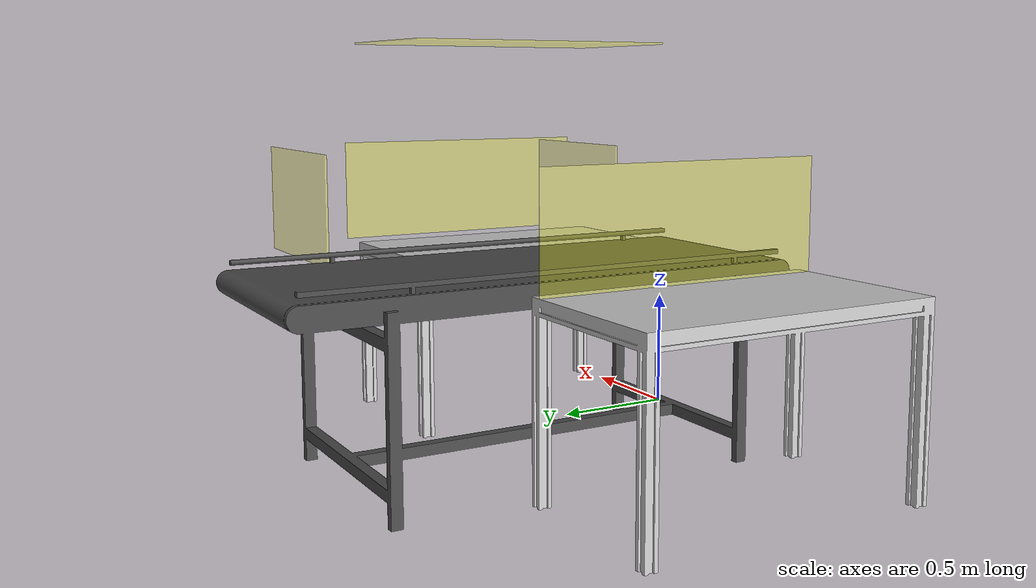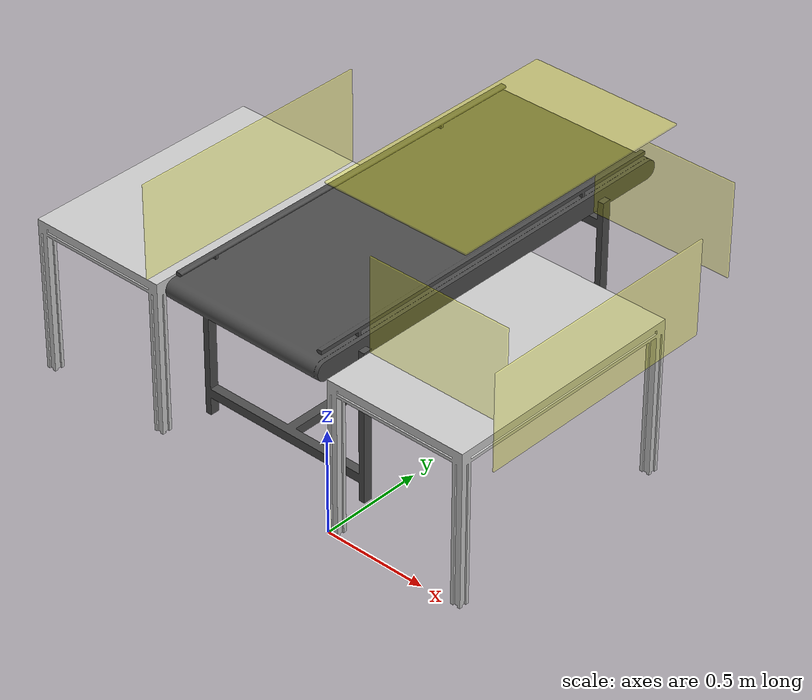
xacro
<?xml version="1.0"?>
<robot xmlns:xacro="http://www.ros.org/wiki/xacro" name="workspace_environment">

  <!-- Materials -->
  <xacro:include filename="$(find ur_workspace_description)/meshes/materials/materials.xacro" />

  <!-- World Link -->
  <link name="world"/>

  <!-- Main Table (First Table) -->
  <link name="table_top">
    <visual>
      <origin xyz="0 0 0" rpy="0 0 0"/>
      <geometry>
        <!-- Scale down from mm to m -->
        <mesh filename="package://ur_workspace_description/meshes/environment/table.stl" scale="0.001 0.001 0.001"/>
      </geometry>
      <material name="workspace_light_gray"/>
    </visual>
    <collision>
      <origin xyz="0 0 0" rpy="0 0 0"/>
      <geometry>
        <box size="-1.2 0.7 0.75"/>
      </geometry>
    </collision>
  </link>

  <joint name="world_to_table" type="fixed">
    <parent link="world"/>
    <child link="table_top"/>
    <!-- Rotated 90 degrees around Z-axis like in reference file -->
    <origin xyz="0 0.05 0" rpy="0 0 0"/>
  </joint>

  <!-- Conveyor Belt -->
  <link name="conveyor_belt">
    <visual>
      <origin xyz="0 0 0" rpy="0 0 0"/>
      <geometry>
        <!-- Scale down from mm to m -->
        <mesh filename="package://ur_workspace_description/meshes/environment/conveyor.stl" scale="0.001 0.001 0.001"/>
      </geometry>
      <material name="workspace_dark_gray"/>
    </visual>
    <collision>
      <origin xyz="0 0 0" rpy="0 0 0"/>
      <geometry>
        <box size="-2.05 0.8 0"/>
      </geometry>
    </collision>
  </link>

  <joint name="world_to_conveyor" type="fixed">
    <parent link="world"/>
    <child link="conveyor_belt"/>
    <!-- Conveyor rotated 90 degrees and positioned between tables -->
    <origin xyz="-0.87 0 0" rpy="0 0 0"/>
  </joint>

  <!-- Second Table -->
  <link name="table_top_2">
    <visual>
      <origin xyz="0 0 0" rpy="0 0 0"/>
      <geometry>
        <!-- Scale down from mm to m -->
        <mesh filename="package://ur_workspace_description/meshes/environment/table.stl" scale="0.001 0.001 0.001"/>
      </geometry>
      <material name="workspace_light_gray"/>
    </visual>
    <collision>
      <origin xyz="0 0 0" rpy="0 0 0"/>
      <geometry>
        <box size="-1.2 0.7 0.75"/>
      </geometry>
    </collision>
  </link>

  <joint name="world_to_table_2" type="fixed">
    <parent link="world"/>
    <child link="table_top_2"/>
    <!-- Second table positioned on the other side of conveyor with 90-degree rotation -->
    <origin xyz="-1.64 0.05 0" rpy="0 0 0"/>
  </joint>

  <!-- Safety Barriers - Adjusted positions for 90-degree rotated tables -->
  <!-- Left Barrier (formerly Back Barrier) -->
  <link name="safety_barrier_left">
    <visual>
      <origin xyz="0 0 0" rpy="0 0 0"/>
      <geometry>
        <!-- Scale down from mm to m -->
        <mesh filename="package://ur_workspace_description/meshes/environment/narrow_safety_barrier.stl" scale="0.001 0.001 0.001"/>
      </geometry>
      <material name="workspace_safety_yellow"/>
    </visual>
    <collision>
      <origin xyz="0 0 0.4" rpy="0 0 1.5708"/>
      <geometry>
        <box size="-1.2 0.05 0.8"/>
      </geometry>
    </collision>
  </link>

  <joint name="table_to_barrier_left" type="fixed">
    <parent link="table_top"/>
    <child link="safety_barrier_left"/>
    <origin xyz="0 1.55 0.75" rpy="0 0 0"/>
  </joint>

  <!-- Right Barrier (formerly Front Barrier) -->
  <link name="safety_barrier_right">
    <visual>
      <origin xyz="0 0 0" rpy="0 0 0"/>
      <geometry>
        <!-- Scale down from mm to m -->
        <mesh filename="package://ur_workspace_description/meshes/environment/narrow_safety_barrier.stl" scale="0.001 0.001 0.001"/>
      </geometry>
      <material name="workspace_safety_yellow"/>
    </visual>
    <collision>
      <origin xyz="0 0 0.4" rpy="0 0 1.5708"/>
      <geometry>
        <box size="-1.2 0.05 0.8"/>
      </geometry>
    </collision>
  </link>

  <joint name="table_to_barrier_right" type="fixed">
    <parent link="table_top"/>
    <child link="safety_barrier_right"/>
    <origin xyz="0 0.2 0.75" rpy="0 0 0"/>
  </joint>

  <!-- Back Barrier (formerly Right Barrier) -->
  <link name="safety_barrier_back">
    <visual>
      <origin xyz="0 0 0" rpy="0 0 0"/>
      <geometry>
        <!-- Scale down from mm to m -->
        <mesh filename="package://ur_workspace_description/meshes/environment/wide_safety_barrier.stl" scale="0.001 0.001 0.001"/>
      </geometry>
      <material name="workspace_safety_yellow"/>
    </visual>
    <collision>
      <origin xyz="0 0 0.4" rpy="0 0 1.5708"/>
      <geometry>
        <box size="0.05 0.7 0.8"/>
      </geometry>
    </collision>
  </link>

  <joint name="table_to_barrier_back" type="fixed">
    <parent link="table_top"/>
    <child link="safety_barrier_back"/>
    <origin xyz="0.85 -0.05 0.75" rpy="0 0 0"/>
  </joint>

  <!-- Front Barrier (formerly Left Barrier) -->
  <link name="safety_barrier_front">
    <visual>
      <origin xyz="0 0 0" rpy="0 0 0"/>
      <geometry>
        <!-- Scale down from mm to m -->
        <mesh filename="package://ur_workspace_description/meshes/environment/wide_safety_barrier.stl" scale="0.001 0.001 0.001"/>
      </geometry>
      <material name="workspace_safety_yellow"/>
    </visual>
    <collision>
      <origin xyz="0 0 0.4" rpy="0 0 1.5708"/>
      <geometry>
        <box size="0.05 0.7 0.8"/>
      </geometry>
    </collision>
  </link>

  <joint name="table_to_barrier_front" type="fixed">
    <parent link="table_top"/>
    <child link="safety_barrier_front"/>
    <origin xyz="-1 -0.05 0.75" rpy="0 0 0"/>
  </joint>

  <!-- Top Barrier -->
  <link name="safety_barrier_top">
    <visual>
      <origin xyz="0 0 0" rpy="0 0 0"/>
      <geometry>
        <!-- Scale down from mm to m -->
        <mesh filename="package://ur_workspace_description/meshes/environment/top_safety_barrier.stl" scale="0.001 0.001 0.001"/>
      </geometry>
      <material name="workspace_safety_yellow"/>
    </visual>
    <collision>
      <origin xyz="0 0 0" rpy="0 0 0"/>
      <geometry>
        <box size="-0.7 1.2 0.01"/>
      </geometry>
    </collision>
  </link>

  <joint name="table_to_barrier_top" type="fixed">
    <parent link="table_top"/>
    <child link="safety_barrier_top"/>
    <origin xyz="0 -0.05 1.65" rpy="0 0 0"/>
  </joint>

</robot>

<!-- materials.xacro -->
<robot xmlns:xacro="http://www.ros.org/wiki/xacro">

  <!-- Use unique prefix for workspace materials to avoid conflicts -->
  <material name="workspace_gray">
    <color rgba="0.5 0.5 0.5 1.0"/>
  </material>

  <material name="workspace_light_gray">
    <color rgba="0.8 0.8 0.8 1.0"/>
  </material>

  <material name="workspace_dark_gray">
    <color rgba="0.3 0.3 0.3 1.0"/>
  </material>

  <material name="workspace_safety_yellow">
    <color rgba="1.0 1.0 0.0 0.3"/>
  </material>

  <material name="workspace_conveyor_black">
    <color rgba="0.1 0.1 0.1 1.0"/>
  </material>

  <!-- Additional materials from target xacro -->
  <material name="workspace_white">
    <color rgba="1 1 1 1"/>
  </material>

  <material name="workspace_brown">
    <color rgba="0.4 0.2 0 1"/>
  </material>

  <material name="workspace_red_transparent">
    <color rgba="1.0 0.0 0.0 0.3"/>
  </material>

  <material name="workspace_dark_green_rubber">
    <color rgba="0 0.43 0 1"/>
  </material>

  <material name="workspace_gray_steel">
    <color rgba="0.5 0.5 0.5 1"/>
  </material>

  <material name="workspace_steel">
    <color rgba="0.5 0.5 0.5 1"/>
  </material>

</robot>
